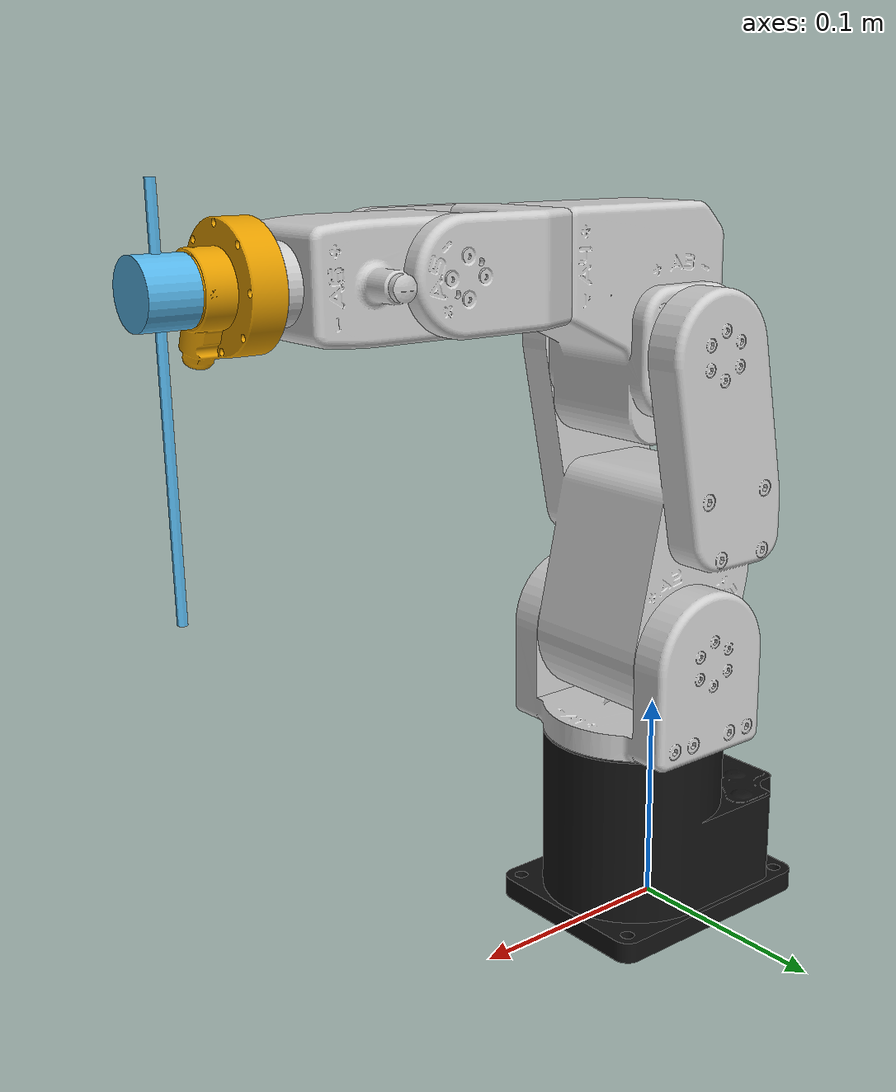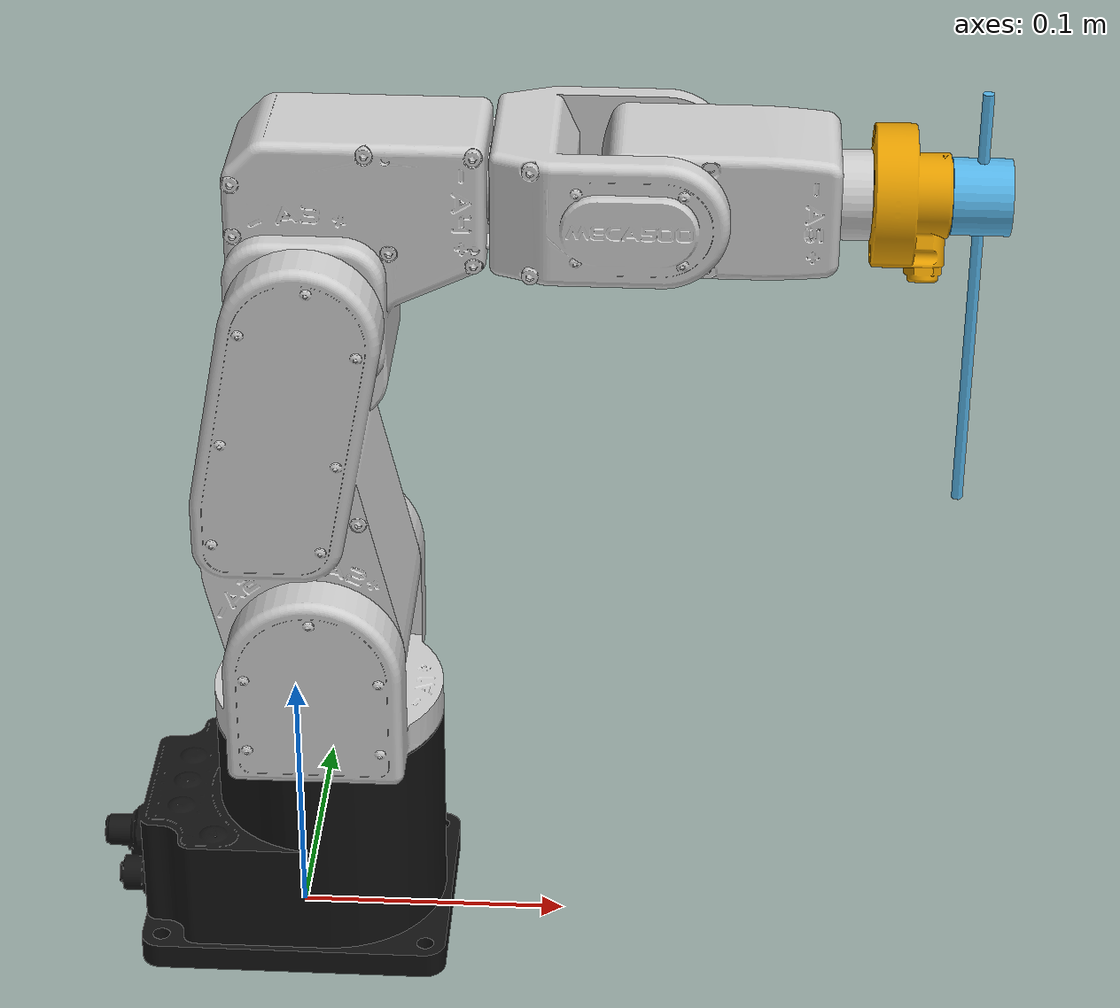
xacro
<?xml version="1.0"?>
<robot xmlns:xacro="http://www.ros.org/wiki/xacro" name="meca500_robot">

    <xacro:include
        filename="$(find mecademic_description)/urdf/meca_500_r3_description.xacro" />

    <!-- World link -->
    <link name="world"/>

    <!-- Fixed joint connecting the world to the base link -->
    <joint name="world_to_base" type="fixed">
        <parent link="world"/>
        <child link="meca_base_link"/>
        <origin xyz="0 0 0" rpy="0 0 0"/>
    </joint>

    <xacro:meca500 />

    <!-- End-effector force link -->
    <link name="ee_force_link">
        <visual>
        <origin xyz="0 0 0" rpy="0 0 0" />
        <geometry>
            <mesh filename="package://mecademic_description/meshes/MiniONE_Pro.stl" scale="0.001 0.001 0.001" />
        </geometry>
        </visual>
        <collision>
        <origin xyz="0 0 0" rpy="0 0 0" />
        <geometry>
            <mesh filename="package://mecademic_description/meshes/MiniONE_Pro.stl" scale="0.001 0.001 0.001"/>
        </geometry>
        </collision>
    </link>

    <!-- Joint connecting meca_axis_6_link to ee_force_link -->
    <joint name="meca_axis_6_to_ee_force_joint" type="fixed">
        <parent link="meca_axis_6_link"/>
        <child link="ee_force_link"/>
        <origin xyz="0.0262 0 0" rpy="0 1.5708 0"/> <!-- 假设 ee_force_link 位于 meca_axis_6_link 的上方 0.1m 处 -->
    </joint>

    <link name="ee_tool_link">
        <visual>
        <origin xyz="0 0 0" rpy="0 0 0" />
        <geometry>
            <mesh filename="package://mecademic_description/meshes/tool.stl" scale="0.001 0.001 0.001" />
        </geometry>
        </visual>
        <collision>
        <origin xyz="0 0 0" rpy="0 0 0" />
        <geometry>
            <mesh filename="package://mecademic_description/meshes/tool.stl" scale="0.001 0.001 0.001"/>
        </geometry>
        </collision>
    </link>

    <!-- Joint connecting meca_axis_6_link to ee_force_link -->
    <joint name="meca_axis_ee_force_to_tool_joint" type="fixed">
        <parent link="ee_force_link"/>
        <child link="ee_tool_link"/>
        <origin xyz="0 0.0 0.01" rpy="0 0 0"/>
    </joint>

    <link name="ee_tool_tip">
    </link>

    <!-- Joint connecting meca_axis_6_link to ee_force_link -->
    <joint name="meca_axis_ee_tool_to_tip_joint" type="fixed">
        <parent link="ee_tool_link"/>
        <child link="ee_tool_tip"/>
        <origin xyz="0.12 0 0.00" rpy="0 0 0"/>
    </joint>

</robot>

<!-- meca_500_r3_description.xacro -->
<robot xmlns:xacro="http://ros.org/wiki/xacro">
  <xacro:macro name="meca500">
  <!-- Base link is the center of the robot's bottom plate -->
  <link name="meca_base_link">
    <visual>
      <origin xyz="0 0 0" rpy="0 0 0" />
      <geometry>
        <mesh filename="package://mecademic_description/meshes/meca_500_r3_base.dae" />
      </geometry>
    </visual>
    <collision>
      <origin xyz="0 0 0" rpy="0 0 0" />
      <geometry>
        <mesh filename="package://mecademic_description/meshes/meca_500_r3_base_collision.stl" />
      </geometry>
    </collision>
  </link>

  <!-- Joint 1 -->
  <link name="meca_axis_1_link">
    <visual>
      <origin xyz="0 0 0" rpy="0 0 0" />
      <geometry>
        <mesh filename="package://mecademic_description/meshes/meca_500_r3_j1.dae" />
      </geometry>
    </visual>
    <collision>
      <origin xyz="0 0 0" rpy="0 0 0" />
      <geometry>
        <mesh filename="package://mecademic_description/meshes/meca_500_r3_j1_collision.stl" />
      </geometry>
    </collision>
  </link>

  <joint name="meca_axis_1_joint" type="revolute">
    <origin xyz="0.012498 0 0.091" rpy="0 0 0" />
    <parent link="meca_base_link" />
    <child link="meca_axis_1_link" />
    <axis xyz="0 0 1" />
    <limit effort="10.0" velocity="2.61799" lower="-3.05433" upper="3.05433" />
  </joint>

  <!-- Joint 2 -->
  <link name="meca_axis_2_link">
    <visual>
      <origin xyz="0 0 0" rpy="0 0 0" />
      <geometry>
        <mesh filename="package://mecademic_description/meshes/meca_500_r3_j2.dae" />
      </geometry>
    </visual>
    <collision>
      <origin xyz="0 0 0" rpy="0 0 0" />
      <geometry>
        <mesh filename="package://mecademic_description/meshes/meca_500_r3_j2_collision.stl" />
      </geometry>
    </collision>
  </link>

  <joint name="meca_axis_2_joint" type="revolute">
    <origin xyz="0 0 0.044" rpy="0 0 0" />
    <parent link="meca_axis_1_link" />
    <child link="meca_axis_2_link" />
    <axis xyz="0 1 0" />
    <limit effort="10.0" velocity="2.61799" lower="-1.22173048" upper="1.5708" />
  </joint>

  <!-- Joint 3 -->
  <link name="meca_axis_3_link">
    <visual>
      <origin xyz="0 0 0" rpy="0 0 0" />
      <geometry>
        <mesh filename="package://mecademic_description/meshes/meca_500_r3_j3.dae" />
      </geometry>
    </visual>
    <collision>
      <origin xyz="0 0 0" rpy="0 0 0" />
      <geometry>
        <mesh filename="package://mecademic_description/meshes/meca_500_r3_j3_collision.stl" />
      </geometry>
    </collision>
  </link>

  <joint name="meca_axis_3_joint" type="revolute">
    <origin xyz="0 0 0.135" rpy="0 0 0" />
    <parent link="meca_axis_2_link" />
    <child link="meca_axis_3_link" />
    <axis xyz="0 1 0" />
    <limit effort="10.0" velocity="3.14159" lower="-2.35619" upper="1.22173048" />
  </joint>

  <!-- Joint 4 -->
  <link name="meca_axis_4_link">
    <visual>
      <origin xyz="0 0 0" rpy="0 0 0" />
      <geometry>
        <mesh filename="package://mecademic_description/meshes/meca_500_r3_j4.dae" />
      </geometry>
    </visual>
    <collision>
      <origin xyz="0 0 0" rpy="0 0 0" />
      <geometry>
        <mesh filename="package://mecademic_description/meshes/meca_500_r3_j4_collision.stl" />
      </geometry>
    </collision>
  </link>

  <joint name="meca_axis_4_joint" type="revolute">
    <origin xyz="0 0 0.038" rpy="0 0 0" />
    <parent link="meca_axis_3_link" />
    <child link="meca_axis_4_link" />
    <axis xyz="1 0 0" />
    <limit effort="10.0" velocity="5.23599" lower="-2.96706" upper="2.96706" />
  </joint>

  <!-- Joint 5 -->
  <link name="meca_axis_5_link">
    <visual>
      <origin xyz="0 0 0" rpy="0 0 0" />
      <geometry>
        <mesh filename="package://mecademic_description/meshes/meca_500_r3_j5.dae" />
      </geometry>
    </visual>
    <collision>
      <origin xyz="0 0 0" rpy="0 0 0" />
      <geometry>
        <mesh filename="package://mecademic_description/meshes/meca_500_r3_j5_collision.stl" />
      </geometry>
    </collision>
  </link>

  <joint name="meca_axis_5_joint" type="revolute">
    <origin xyz="0.12 0 0" rpy="0 0 0" />
    <parent link="meca_axis_4_link" />
    <child link="meca_axis_5_link" />
    <axis xyz="0 1 0" />
    <limit effort="10.0" velocity="5.23599" lower="-2.00713" upper="2.00713" />
  </joint>

  <!-- Joint 6 -->
  <link name="meca_axis_6_link">
    <visual>
      <origin xyz="0 0 0" rpy="0 0 0" />
      <geometry>
        <mesh filename="package://mecademic_description/meshes/meca_500_r3_j6.dae" />
      </geometry>
    </visual>
    <collision>
      <origin xyz="0 0 0" rpy="0 0 0" />
      <geometry>
        <mesh filename="package://mecademic_description/meshes/meca_500_r3_j6_collision.stl" />
      </geometry>
    </collision>
  </link>

  <joint name="meca_axis_6_joint" type="revolute">
    <origin xyz="0.07 0 0" rpy="0 0 0" />
    <parent link="meca_axis_5_link" />
    <child link="meca_axis_6_link" />
    <axis xyz="1 0 0" />
    <limit effort="10.0" velocity="8.72665" lower="-3.14159" upper="3.14159" />
  </joint>
  </xacro:macro>
</robot>
